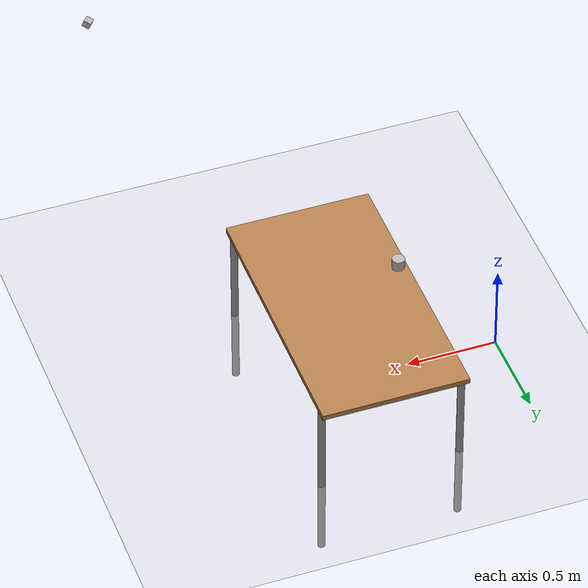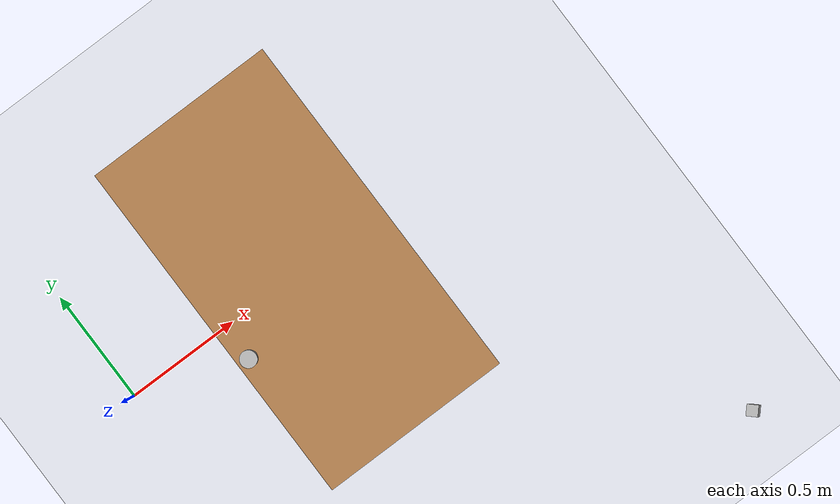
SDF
<sdf version="1.6">
 <world name="grab_vlm">
  <include><uri>model://ground_plane</uri></include>
  <include><uri>model://sun</uri></include>
  <include><name>table</name><uri>model://table</uri><pose>0.85 0 -0.45 0 0 1.5708</pose></include>
  <include><name>beer_bottle</name><uri>model://beer</uri><pose>0.50 -0.16 0.565 0 0 0</pose></include>
  <model name="scene_camera">
   <static>true</static>
   <pose>1.8 -1.3 1.7 0 0.35 2.4</pose>
   <link name="link">
    <visual name="vis"><geometry><box><size>0.04 0.04 0.04</size></box></geometry></visual>
    <sensor type="camera" name="scene_cam">
     <always_on>true</always_on>
     <update_rate>15</update_rate>
     <camera name="scene">
      <horizontal_fov>1.2</horizontal_fov>
      <image><width>960</width><height>540</height><format>R8G8B8</format></image>
      <clip><near>0.05</near><far>50</far></clip>
     </camera>
     <plugin name="scene_cam_controller" filename="libgazebo_ros_camera.so">
      <ros>
       <namespace>/sim_scene/arm</namespace>
       <remapping>scene/image_raw:=image_raw</remapping>
       <remapping>scene/camera_info:=camera_info</remapping>
      </ros>
      <camera_name>scene</camera_name>
      <frame_name>scene_camera</frame_name>
     </plugin>
    </sensor>
   </link>
  </model>
  <physics name="default_physics" default="0" type="ode">
   <max_step_size>0.001</max_step_size>
   <real_time_factor>1.0</real_time_factor>
   <real_time_update_rate>1000</real_time_update_rate>
  </physics>
 </world>
</sdf>

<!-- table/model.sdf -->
<sdf version="1.5">
  <model name="table">
    <static>true</static>
    <link name="link">
      <collision name="surface">
        <pose>0 0 1.0 0 0 0</pose>
        <geometry>
          <box>
            <size>1.5 0.8 0.03</size>
          </box>
        </geometry>
        <surface>
          <friction>
            <ode>
              <mu>0.6</mu>
              <mu2>0.6</mu2>
            </ode>
          </friction>
        </surface>
      </collision>
      <visual name="visual1">
        <pose>0 0 1.0 0 0 0</pose>
        <geometry>
          <box>
            <size>1.5 0.8 0.03</size>
          </box>
        </geometry>
        <material>
          <script>
            <uri>model://media/materials/scripts/gazebo.material</uri>
            <name>Gazebo/Wood</name>
          </script>
        </material>
      </visual>
      <collision name="front_left_leg">
        <pose>0.68 0.38 0.5 0 0 0</pose>
        <geometry>
          <cylinder>
            <radius>0.02</radius>
            <length>1.0</length>
          </cylinder>
        </geometry>
      </collision>
      <visual name="front_left_leg">
        <pose>0.68 0.38 0.5 0 0 0</pose>
        <geometry>
          <cylinder>
            <radius>0.02</radius>
            <length>1.0</length>
          </cylinder>
        </geometry>
        <material>
          <script>
            <uri>model://media/materials/scripts/gazebo.material</uri>
            <name>Gazebo/Grey</name>
          </script>
        </material>
      </visual>
      <collision name="front_right_leg">
        <pose>0.68 -0.38 0.5 0 0 0</pose>
        <geometry>
          <cylinder>
            <radius>0.02</radius>
            <length>1.0</length>
          </cylinder>
        </geometry>
      </collision>
      <visual name="front_right_leg">
        <pose>0.68 -0.38 0.5 0 0 0</pose>
        <geometry>
          <cylinder>
            <radius>0.02</radius>
            <length>1.0</length>
          </cylinder>
        </geometry>
        <material>
          <script>
            <uri>model://media/materials/scripts/gazebo.material</uri>
            <name>Gazebo/Grey</name>
          </script>
        </material>
      </visual>
      <collision name="back_right_leg">
        <pose>-0.68 -0.38 0.5 0 0 0</pose>
        <geometry>
          <cylinder>
            <radius>0.02</radius>
            <length>1.0</length>
          </cylinder>
        </geometry>
      </collision>
      <visual name="back_right_leg">
        <pose>-0.68 -0.38 0.5 0 0 0</pose>
        <geometry>
          <cylinder>
            <radius>0.02</radius>
            <length>1.0</length>
          </cylinder>
        </geometry>
        <material>
          <script>
            <uri>model://media/materials/scripts/gazebo.material</uri>
            <name>Gazebo/Grey</name>
          </script>
        </material>
      </visual>
      <collision name="back_left_leg">
        <pose>-0.68 0.38 0.5 0 0 0</pose>
        <geometry>
          <cylinder>
            <radius>0.02</radius>
            <length>1.0</length>
          </cylinder>
        </geometry>
      </collision>
      <visual name="back_left_leg">
        <pose>-0.68 0.38 0.5 0 0 0</pose>
        <geometry>
          <cylinder>
            <radius>0.02</radius>
            <length>1.0</length>
          </cylinder>
        </geometry>
        <material>
          <script>
            <uri>model://media/materials/scripts/gazebo.material</uri>
            <name>Gazebo/Grey</name>
          </script>
        </material>
      </visual>
    </link>
  </model>
</sdf>

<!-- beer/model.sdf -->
<sdf version='1.4'>
  <model name="beer">
    <link name='link'>
      <pose>0 0 0 0 0 0</pose>
      <inertial>
        <mass>0.390</mass>
        <inertia>
          <ixx>0.00058</ixx>
          <ixy>0</ixy>
          <ixz>0</ixz>
          <iyy>0.00058</iyy>
          <iyz>0</iyz>
          <izz>0.00025</izz>
        </inertia>
      </inertial>
      <collision name='collision'>
        <geometry>
          <cylinder>
            <radius>0.03500</radius>
            <length>0.12000</length>
          </cylinder>
        </geometry>
      </collision>

      <visual name='visual'>
        <geometry>
          <cylinder>
            <radius>0.03500</radius>
            <length>0.12000</length>
          </cylinder>
        </geometry>

        <material>
          <script>
            <uri>model://beer/materials/scripts</uri>
            <uri>model://beer/materials/textures</uri>
            <name>Beer/Diffuse</name>
          </script>
        </material>
      </visual>
    </link>
  </model>
</sdf>
